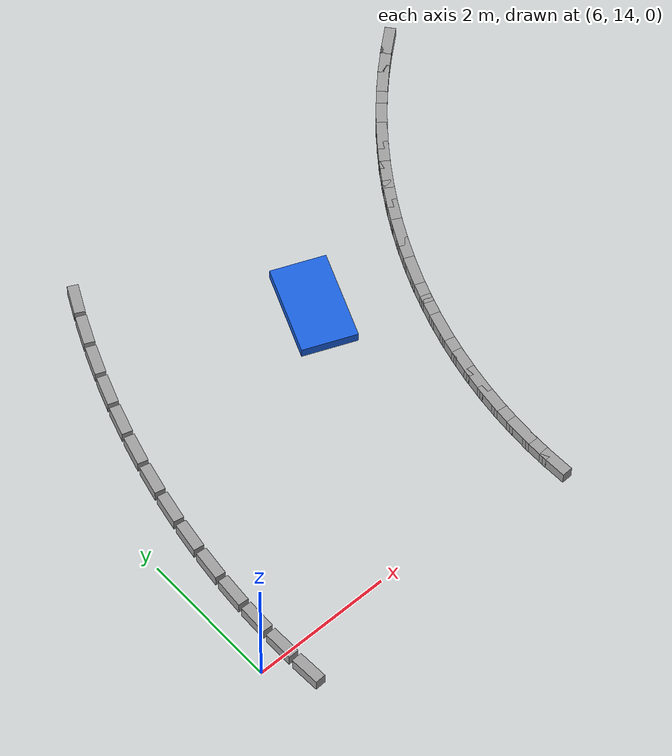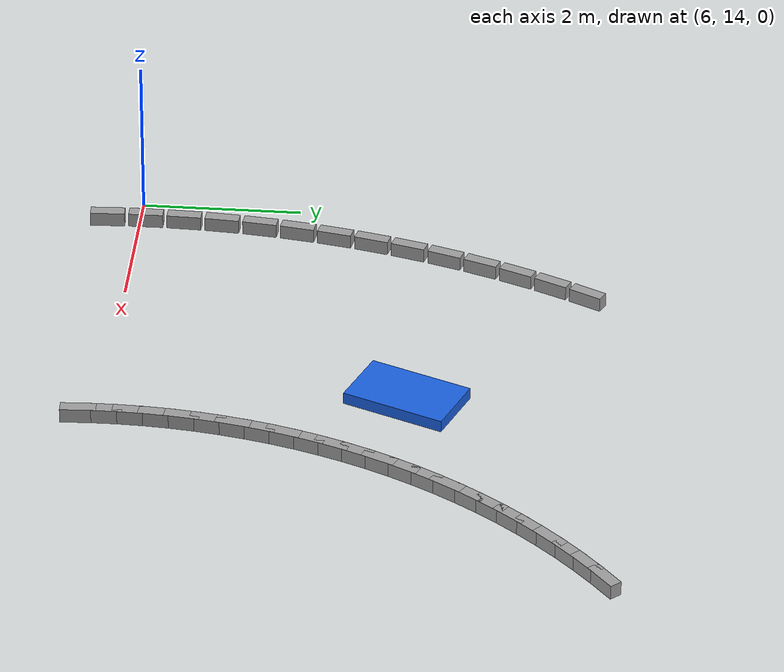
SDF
<sdf version="1.10">
 <world name="s_curve_avoidance">
  <model name="left_curb_seg_0057">
   <static>true</static>
   <pose>6.424483 13.591635 0.090000 0 0 1.613672</pose>
   <link name="curb">
    <collision name="collision">
     <geometry><box><size>0.432000 0.150000 0.180000</size></box></geometry>
    </collision>
    <visual name="visual">
     <geometry><box><size>0.432000 0.150000 0.180000</size></box></geometry>
     <material><ambient>0.58 0.58 0.58 1</ambient><diffuse>0.62 0.62 0.62 1</diffuse></material>
    </visual>
   </link>
  </model>
  <model name="left_curb_seg_0058">
   <static>true</static>
   <pose>6.413344 14.078475 0.090000 0 0 1.573672</pose>
   <link name="curb">
    <collision name="collision">
     <geometry><box><size>0.432000 0.150000 0.180000</size></box></geometry>
    </collision>
    <visual name="visual">
     <geometry><box><size>0.432000 0.150000 0.180000</size></box></geometry>
     <material><ambient>0.58 0.58 0.58 1</ambient><diffuse>0.62 0.62 0.62 1</diffuse></material>
    </visual>
   </link>
  </model>
  <model name="left_curb_seg_0059">
   <static>true</static>
   <pose>6.421682 14.565371 0.090000 0 0 1.533672</pose>
   <link name="curb">
    <collision name="collision">
     <geometry><box><size>0.432000 0.150000 0.180000</size></box></geometry>
    </collision>
    <visual name="visual">
     <geometry><box><size>0.432000 0.150000 0.180000</size></box></geometry>
     <material><ambient>0.58 0.58 0.58 1</ambient><diffuse>0.62 0.62 0.62 1</diffuse></material>
    </visual>
   </link>
  </model>
  <model name="left_curb_seg_0060">
   <static>true</static>
   <pose>6.449485 15.051544 0.090000 0 0 1.493672</pose>
   <link name="curb">
    <collision name="collision">
     <geometry><box><size>0.432000 0.150000 0.180000</size></box></geometry>
    </collision>
    <visual name="visual">
     <geometry><box><size>0.432000 0.150000 0.180000</size></box></geometry>
     <material><ambient>0.58 0.58 0.58 1</ambient><diffuse>0.62 0.62 0.62 1</diffuse></material>
    </visual>
   </link>
  </model>
  <model name="left_curb_seg_0061">
   <static>true</static>
   <pose>6.496707 15.536217 0.090000 0 0 1.453672</pose>
   <link name="curb">
    <collision name="collision">
     <geometry><box><size>0.432000 0.150000 0.180000</size></box></geometry>
    </collision>
    <visual name="visual">
     <geometry><box><size>0.432000 0.150000 0.180000</size></box></geometry>
     <material><ambient>0.58 0.58 0.58 1</ambient><diffuse>0.62 0.62 0.62 1</diffuse></material>
    </visual>
   </link>
  </model>
  <model name="left_curb_seg_0062">
   <static>true</static>
   <pose>6.563273 16.018613 0.090000 0 0 1.413672</pose>
   <link name="curb">
    <collision name="collision">
     <geometry><box><size>0.432000 0.150000 0.180000</size></box></geometry>
    </collision>
    <visual name="visual">
     <geometry><box><size>0.432000 0.150000 0.180000</size></box></geometry>
     <material><ambient>0.58 0.58 0.58 1</ambient><diffuse>0.62 0.62 0.62 1</diffuse></material>
    </visual>
   </link>
  </model>
  <model name="left_curb_seg_0063">
   <static>true</static>
   <pose>6.649076 16.497962 0.090000 0 0 1.373672</pose>
   <link name="curb">
    <collision name="collision">
     <geometry><box><size>0.432000 0.150000 0.180000</size></box></geometry>
    </collision>
    <visual name="visual">
     <geometry><box><size>0.432000 0.150000 0.180000</size></box></geometry>
     <material><ambient>0.58 0.58 0.58 1</ambient><diffuse>0.62 0.62 0.62 1</diffuse></material>
    </visual>
   </link>
  </model>
  <model name="left_curb_seg_0064">
   <static>true</static>
   <pose>6.753980 16.973496 0.090000 0 0 1.333672</pose>
   <link name="curb">
    <collision name="collision">
     <geometry><box><size>0.432000 0.150000 0.180000</size></box></geometry>
    </collision>
    <visual name="visual">
     <geometry><box><size>0.432000 0.150000 0.180000</size></box></geometry>
     <material><ambient>0.58 0.58 0.58 1</ambient><diffuse>0.62 0.62 0.62 1</diffuse></material>
    </visual>
   </link>
  </model>
  <model name="left_curb_seg_0065">
   <static>true</static>
   <pose>6.877816 17.444455 0.090000 0 0 1.293672</pose>
   <link name="curb">
    <collision name="collision">
     <geometry><box><size>0.432000 0.150000 0.180000</size></box></geometry>
    </collision>
    <visual name="visual">
     <geometry><box><size>0.432000 0.150000 0.180000</size></box></geometry>
     <material><ambient>0.58 0.58 0.58 1</ambient><diffuse>0.62 0.62 0.62 1</diffuse></material>
    </visual>
   </link>
  </model>
  <model name="left_curb_seg_0066">
   <static>true</static>
   <pose>7.020386 17.910084 0.090000 0 0 1.253672</pose>
   <link name="curb">
    <collision name="collision">
     <geometry><box><size>0.432000 0.150000 0.180000</size></box></geometry>
    </collision>
    <visual name="visual">
     <geometry><box><size>0.432000 0.150000 0.180000</size></box></geometry>
     <material><ambient>0.58 0.58 0.58 1</ambient><diffuse>0.62 0.62 0.62 1</diffuse></material>
    </visual>
   </link>
  </model>
  <model name="left_curb_seg_0067">
   <static>true</static>
   <pose>7.181462 18.369640 0.090000 0 0 1.213672</pose>
   <link name="curb">
    <collision name="collision">
     <geometry><box><size>0.432000 0.150000 0.180000</size></box></geometry>
    </collision>
    <visual name="visual">
     <geometry><box><size>0.432000 0.150000 0.180000</size></box></geometry>
     <material><ambient>0.58 0.58 0.58 1</ambient><diffuse>0.62 0.62 0.62 1</diffuse></material>
    </visual>
   </link>
  </model>
  <model name="left_curb_seg_0068">
   <static>true</static>
   <pose>7.360787 18.822387 0.090000 0 0 1.173672</pose>
   <link name="curb">
    <collision name="collision">
     <geometry><box><size>0.432000 0.150000 0.180000</size></box></geometry>
    </collision>
    <visual name="visual">
     <geometry><box><size>0.432000 0.150000 0.180000</size></box></geometry>
     <material><ambient>0.58 0.58 0.58 1</ambient><diffuse>0.62 0.62 0.62 1</diffuse></material>
    </visual>
   </link>
  </model>
  <model name="left_curb_seg_0069">
   <static>true</static>
   <pose>7.558073 19.267601 0.090000 0 0 1.133672</pose>
   <link name="curb">
    <collision name="collision">
     <geometry><box><size>0.432000 0.150000 0.180000</size></box></geometry>
    </collision>
    <visual name="visual">
     <geometry><box><size>0.432000 0.150000 0.180000</size></box></geometry>
     <material><ambient>0.58 0.58 0.58 1</ambient><diffuse>0.62 0.62 0.62 1</diffuse></material>
    </visual>
   </link>
  </model>
  <model name="left_curb_seg_0070">
   <static>true</static>
   <pose>7.773006 19.704570 0.090000 0 0 1.093672</pose>
   <link name="curb">
    <collision name="collision">
     <geometry><box><size>0.432000 0.150000 0.180000</size></box></geometry>
    </collision>
    <visual name="visual">
     <geometry><box><size>0.432000 0.150000 0.180000</size></box></geometry>
     <material><ambient>0.58 0.58 0.58 1</ambient><diffuse>0.62 0.62 0.62 1</diffuse></material>
    </visual>
   </link>
  </model>
  <model name="right_curb_seg_0057">
   <static>true</static>
   <pose>10.770485 13.778088 0.090000 0 0 1.613672</pose>
   <link name="curb">
    <collision name="collision">
     <geometry><box><size>0.432000 0.150000 0.180000</size></box></geometry>
    </collision>
    <visual name="visual">
     <geometry><box><size>0.432000 0.150000 0.180000</size></box></geometry>
     <material><ambient>0.58 0.58 0.58 1</ambient><diffuse>0.62 0.62 0.62 1</diffuse></material>
    </visual>
   </link>
  </model>
  <model name="right_curb_seg_0058">
   <static>true</static>
   <pose>10.763326 14.090985 0.090000 0 0 1.573672</pose>
   <link name="curb">
    <collision name="collision">
     <geometry><box><size>0.432000 0.150000 0.180000</size></box></geometry>
    </collision>
    <visual name="visual">
     <geometry><box><size>0.432000 0.150000 0.180000</size></box></geometry>
     <material><ambient>0.58 0.58 0.58 1</ambient><diffuse>0.62 0.62 0.62 1</diffuse></material>
    </visual>
   </link>
  </model>
  <model name="right_curb_seg_0059">
   <static>true</static>
   <pose>10.768685 14.403919 0.090000 0 0 1.533672</pose>
   <link name="curb">
    <collision name="collision">
     <geometry><box><size>0.432000 0.150000 0.180000</size></box></geometry>
    </collision>
    <visual name="visual">
     <geometry><box><size>0.432000 0.150000 0.180000</size></box></geometry>
     <material><ambient>0.58 0.58 0.58 1</ambient><diffuse>0.62 0.62 0.62 1</diffuse></material>
    </visual>
   </link>
  </model>
  <model name="right_curb_seg_0060">
   <static>true</static>
   <pose>10.786554 14.716387 0.090000 0 0 1.493672</pose>
   <link name="curb">
    <collision name="collision">
     <geometry><box><size>0.432000 0.150000 0.180000</size></box></geometry>
    </collision>
    <visual name="visual">
     <geometry><box><size>0.432000 0.150000 0.180000</size></box></geometry>
     <material><ambient>0.58 0.58 0.58 1</ambient><diffuse>0.62 0.62 0.62 1</diffuse></material>
    </visual>
   </link>
  </model>
  <model name="right_curb_seg_0061">
   <static>true</static>
   <pose>10.816904 15.027891 0.090000 0 0 1.453672</pose>
   <link name="curb">
    <collision name="collision">
     <geometry><box><size>0.432000 0.150000 0.180000</size></box></geometry>
    </collision>
    <visual name="visual">
     <geometry><box><size>0.432000 0.150000 0.180000</size></box></geometry>
     <material><ambient>0.58 0.58 0.58 1</ambient><diffuse>0.62 0.62 0.62 1</diffuse></material>
    </visual>
   </link>
  </model>
  <model name="right_curb_seg_0062">
   <static>true</static>
   <pose>10.859687 15.337933 0.090000 0 0 1.413672</pose>
   <link name="curb">
    <collision name="collision">
     <geometry><box><size>0.432000 0.150000 0.180000</size></box></geometry>
    </collision>
    <visual name="visual">
     <geometry><box><size>0.432000 0.150000 0.180000</size></box></geometry>
     <material><ambient>0.58 0.58 0.58 1</ambient><diffuse>0.62 0.62 0.62 1</diffuse></material>
    </visual>
   </link>
  </model>
  <model name="right_curb_seg_0063">
   <static>true</static>
   <pose>10.914833 15.646015 0.090000 0 0 1.373672</pose>
   <link name="curb">
    <collision name="collision">
     <geometry><box><size>0.432000 0.150000 0.180000</size></box></geometry>
    </collision>
    <visual name="visual">
     <geometry><box><size>0.432000 0.150000 0.180000</size></box></geometry>
     <material><ambient>0.58 0.58 0.58 1</ambient><diffuse>0.62 0.62 0.62 1</diffuse></material>
    </visual>
   </link>
  </model>
  <model name="right_curb_seg_0064">
   <static>true</static>
   <pose>10.982256 15.951646 0.090000 0 0 1.333672</pose>
   <link name="curb">
    <collision name="collision">
     <geometry><box><size>0.432000 0.150000 0.180000</size></box></geometry>
    </collision>
    <visual name="visual">
     <geometry><box><size>0.432000 0.150000 0.180000</size></box></geometry>
     <material><ambient>0.58 0.58 0.58 1</ambient><diffuse>0.62 0.62 0.62 1</diffuse></material>
    </visual>
   </link>
  </model>
  <model name="right_curb_seg_0065">
   <static>true</static>
   <pose>11.061847 16.254336 0.090000 0 0 1.293672</pose>
   <link name="curb">
    <collision name="collision">
     <geometry><box><size>0.432000 0.150000 0.180000</size></box></geometry>
    </collision>
    <visual name="visual">
     <geometry><box><size>0.432000 0.150000 0.180000</size></box></geometry>
     <material><ambient>0.58 0.58 0.58 1</ambient><diffuse>0.62 0.62 0.62 1</diffuse></material>
    </visual>
   </link>
  </model>
  <model name="right_curb_seg_0066">
   <static>true</static>
   <pose>11.153478 16.553601 0.090000 0 0 1.253672</pose>
   <link name="curb">
    <collision name="collision">
     <geometry><box><size>0.432000 0.150000 0.180000</size></box></geometry>
    </collision>
    <visual name="visual">
     <geometry><box><size>0.432000 0.150000 0.180000</size></box></geometry>
     <material><ambient>0.58 0.58 0.58 1</ambient><diffuse>0.62 0.62 0.62 1</diffuse></material>
    </visual>
   </link>
  </model>
  <model name="right_curb_seg_0067">
   <static>true</static>
   <pose>11.257004 16.848962 0.090000 0 0 1.213672</pose>
   <link name="curb">
    <collision name="collision">
     <geometry><box><size>0.432000 0.150000 0.180000</size></box></geometry>
    </collision>
    <visual name="visual">
     <geometry><box><size>0.432000 0.150000 0.180000</size></box></geometry>
     <material><ambient>0.58 0.58 0.58 1</ambient><diffuse>0.62 0.62 0.62 1</diffuse></material>
    </visual>
   </link>
  </model>
  <model name="right_curb_seg_0068">
   <static>true</static>
   <pose>11.372257 17.139947 0.090000 0 0 1.173672</pose>
   <link name="curb">
    <collision name="collision">
     <geometry><box><size>0.432000 0.150000 0.180000</size></box></geometry>
    </collision>
    <visual name="visual">
     <geometry><box><size>0.432000 0.150000 0.180000</size></box></geometry>
     <material><ambient>0.58 0.58 0.58 1</ambient><diffuse>0.62 0.62 0.62 1</diffuse></material>
    </visual>
   </link>
  </model>
  <model name="right_curb_seg_0069">
   <static>true</static>
   <pose>11.499056 17.426091 0.090000 0 0 1.133672</pose>
   <link name="curb">
    <collision name="collision">
     <geometry><box><size>0.432000 0.150000 0.180000</size></box></geometry>
    </collision>
    <visual name="visual">
     <geometry><box><size>0.432000 0.150000 0.180000</size></box></geometry>
     <material><ambient>0.58 0.58 0.58 1</ambient><diffuse>0.62 0.62 0.62 1</diffuse></material>
    </visual>
   </link>
  </model>
  <model name="right_curb_seg_0070">
   <static>true</static>
   <pose>11.637195 17.706935 0.090000 0 0 1.093672</pose>
   <link name="curb">
    <collision name="collision">
     <geometry><box><size>0.432000 0.150000 0.180000</size></box></geometry>
    </collision>
    <visual name="visual">
     <geometry><box><size>0.432000 0.150000 0.180000</size></box></geometry>
     <material><ambient>0.58 0.58 0.58 1</ambient><diffuse>0.62 0.62 0.62 1</diffuse></material>
    </visual>
   </link>
  </model>
  <model name="right_curb_seg_0071">
   <static>true</static>
   <pose>11.786455 17.982031 0.090000 0 0 1.053672</pose>
   <link name="curb">
    <collision name="collision">
     <geometry><box><size>0.432000 0.150000 0.180000</size></box></geometry>
    </collision>
    <visual name="visual">
     <geometry><box><size>0.432000 0.150000 0.180000</size></box></geometry>
     <material><ambient>0.58 0.58 0.58 1</ambient><diffuse>0.62 0.62 0.62 1</diffuse></material>
    </visual>
   </link>
  </model>
  <model name="right_curb_seg_0072">
   <static>true</static>
   <pose>11.946596 18.250937 0.090000 0 0 1.013672</pose>
   <link name="curb">
    <collision name="collision">
     <geometry><box><size>0.432000 0.150000 0.180000</size></box></geometry>
    </collision>
    <visual name="visual">
     <geometry><box><size>0.432000 0.150000 0.180000</size></box></geometry>
     <material><ambient>0.58 0.58 0.58 1</ambient><diffuse>0.62 0.62 0.62 1</diffuse></material>
    </visual>
   </link>
  </model>
  <model name="right_curb_seg_0073">
   <static>true</static>
   <pose>12.117362 18.513225 0.090000 0 0 0.973672</pose>
   <link name="curb">
    <collision name="collision">
     <geometry><box><size>0.432000 0.150000 0.180000</size></box></geometry>
    </collision>
    <visual name="visual">
     <geometry><box><size>0.432000 0.150000 0.180000</size></box></geometry>
     <material><ambient>0.58 0.58 0.58 1</ambient><diffuse>0.62 0.62 0.62 1</diffuse></material>
    </visual>
   </link>
  </model>
  <model name="right_curb_seg_0074">
   <static>true</static>
   <pose>12.298481 18.768474 0.090000 0 0 0.933672</pose>
   <link name="curb">
    <collision name="collision">
     <geometry><box><size>0.432000 0.150000 0.180000</size></box></geometry>
    </collision>
    <visual name="visual">
     <geometry><box><size>0.432000 0.150000 0.180000</size></box></geometry>
     <material><ambient>0.58 0.58 0.58 1</ambient><diffuse>0.62 0.62 0.62 1</diffuse></material>
    </visual>
   </link>
  </model>
  <model name="right_curb_seg_0075">
   <static>true</static>
   <pose>12.489662 19.016276 0.090000 0 0 0.893672</pose>
   <link name="curb">
    <collision name="collision">
     <geometry><box><size>0.432000 0.150000 0.180000</size></box></geometry>
    </collision>
    <visual name="visual">
     <geometry><box><size>0.432000 0.150000 0.180000</size></box></geometry>
     <material><ambient>0.58 0.58 0.58 1</ambient><diffuse>0.62 0.62 0.62 1</diffuse></material>
    </visual>
   </link>
  </model>
  <model name="right_curb_seg_0076">
   <static>true</static>
   <pose>12.690599 19.256234 0.090000 0 0 0.853672</pose>
   <link name="curb">
    <collision name="collision">
     <geometry><box><size>0.432000 0.150000 0.180000</size></box></geometry>
    </collision>
    <visual name="visual">
     <geometry><box><size>0.432000 0.150000 0.180000</size></box></geometry>
     <material><ambient>0.58 0.58 0.58 1</ambient><diffuse>0.62 0.62 0.62 1</diffuse></material>
    </visual>
   </link>
  </model>
  <model name="right_curb_seg_0077">
   <static>true</static>
   <pose>12.900971 19.487965 0.090000 0 0 0.813672</pose>
   <link name="curb">
    <collision name="collision">
     <geometry><box><size>0.432000 0.150000 0.180000</size></box></geometry>
    </collision>
    <visual name="visual">
     <geometry><box><size>0.432000 0.150000 0.180000</size></box></geometry>
     <material><ambient>0.58 0.58 0.58 1</ambient><diffuse>0.62 0.62 0.62 1</diffuse></material>
    </visual>
   </link>
  </model>
  <model name="right_curb_seg_0078">
   <static>true</static>
   <pose>13.120442 19.711098 0.090000 0 0 0.773672</pose>
   <link name="curb">
    <collision name="collision">
     <geometry><box><size>0.432000 0.150000 0.180000</size></box></geometry>
    </collision>
    <visual name="visual">
     <geometry><box><size>0.432000 0.150000 0.180000</size></box></geometry>
     <material><ambient>0.58 0.58 0.58 1</ambient><diffuse>0.62 0.62 0.62 1</diffuse></material>
    </visual>
   </link>
  </model>
  <model name="right_curb_seg_0079">
   <static>true</static>
   <pose>13.348661 19.925277 0.090000 0 0 0.733672</pose>
   <link name="curb">
    <collision name="collision">
     <geometry><box><size>0.432000 0.150000 0.180000</size></box></geometry>
    </collision>
    <visual name="visual">
     <geometry><box><size>0.432000 0.150000 0.180000</size></box></geometry>
     <material><ambient>0.58 0.58 0.58 1</ambient><diffuse>0.62 0.62 0.62 1</diffuse></material>
    </visual>
   </link>
  </model>
  <model name="right_curb_seg_0080">
   <static>true</static>
   <pose>13.585261 20.130157 0.090000 0 0 0.693672</pose>
   <link name="curb">
    <collision name="collision">
     <geometry><box><size>0.432000 0.150000 0.180000</size></box></geometry>
    </collision>
    <visual name="visual">
     <geometry><box><size>0.432000 0.150000 0.180000</size></box></geometry>
     <material><ambient>0.58 0.58 0.58 1</ambient><diffuse>0.62 0.62 0.62 1</diffuse></material>
    </visual>
   </link>
  </model>
  <model name="obstacle_2">
   <static>true</static>
   <pose>10.069913 17.641320 0.075 0 0 1.178156</pose>
   <link name="box_link">
    <collision name="collision"><geometry><box><size>1.30 0.78 0.15</size></box></geometry></collision>
    <visual name="visual">
     <geometry><box><size>1.30 0.78 0.15</size></box></geometry>
     <material><ambient>0.10 0.38 0.88 1</ambient><diffuse>0.10 0.38 0.88 1</diffuse></material>
    </visual>
   </link>
  </model>
 </world>
</sdf>
